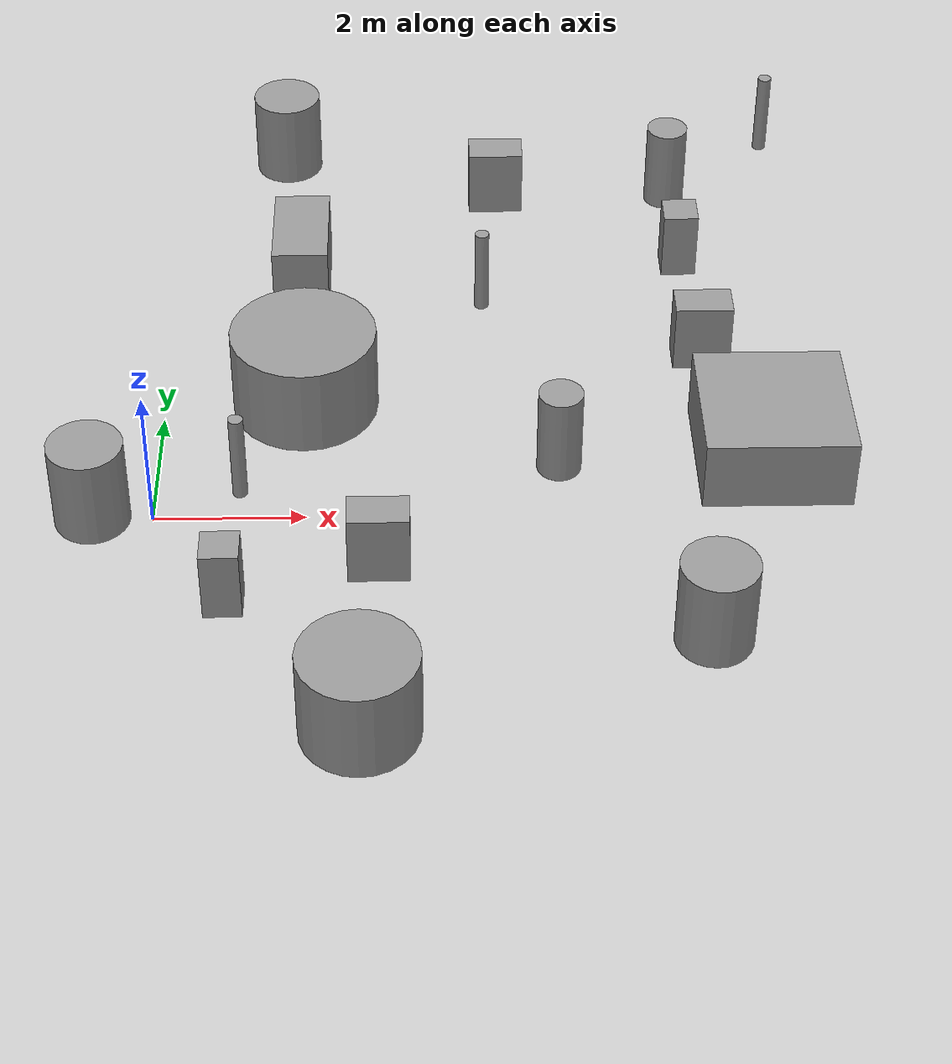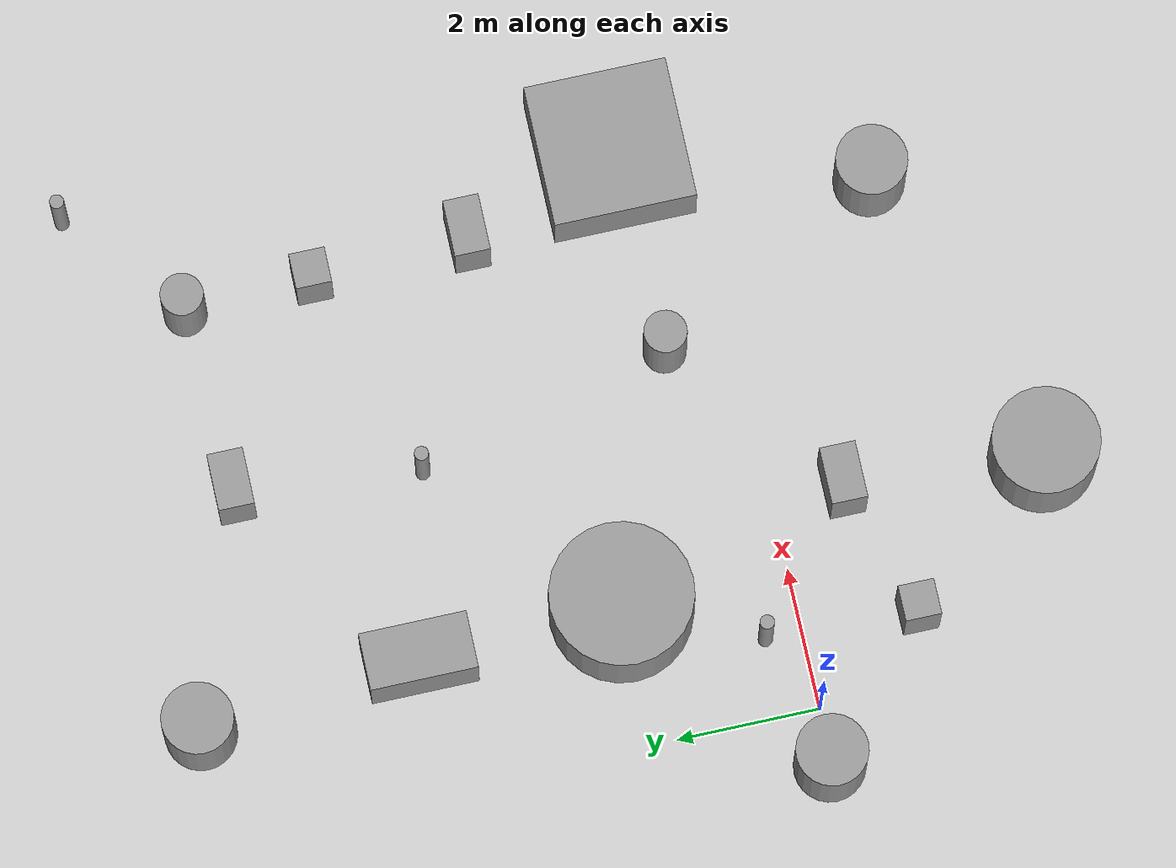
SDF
<sdf version="1.7">
 <world name="default">
  <model name="ground_plane">
   <static>1</static>
   <link name="link">
    <collision name="collision">
     <geometry><plane><normal>0 0 1</normal><size>100 100</size></plane></geometry>
     <surface>
      <contact><collide_bitmask>65535</collide_bitmask></contact>
      <friction><ode><mu>100</mu><mu2>50</mu2></ode></friction>
     </surface>
    </collision>
    <visual name="visual">
     <cast_shadows>0</cast_shadows>
     <geometry><plane><normal>0 0 1</normal><size>100 100</size></plane></geometry>
     <material>
      <script><uri>file://media/materials/scripts/gazebo.material</uri><name>Gazebo/Grey</name></script>
     </material>
    </visual>
   </link>
  </model>
  <model name="Untitled">
   <link name="link_0_clone_2_clone">
    <inertial>
     <mass>1</mass>
     <inertia><ixx>0.145833</ixx><ixy>0</ixy><ixz>0</ixz><iyy>0.145833</iyy><iyz>0</iyz><izz>0.125</izz></inertia>
    </inertial>
    <pose>4.8968 4.95603 0 0 -0 0</pose>
    <visual name="visual">
     <geometry><cylinder><radius>0.1</radius><length>1.5</length></cylinder></geometry>
     <material>
      <lighting>1</lighting>
      <script><uri>file://media/materials/scripts/gazebo.material</uri><name>Gazebo/Grey</name></script>
      <shader type="pixel"><normal_map>__default__</normal_map></shader>
      <ambient>0.3 0.3 0.3 1</ambient>
      <diffuse>0.7 0.7 0.7 1</diffuse>
      <specular>0.01 0.01 0.01 1</specular>
      <emissive>0 0 0 1</emissive>
     </material>
    </visual>
    <collision name="collision">
     <geometry><cylinder><radius>0.1</radius><length>1.5</length></cylinder></geometry>
     <surface>
      <friction>
       <ode><mu>1</mu><mu2>1</mu2><fdir1>0 0 0</fdir1><slip1>0</slip1><slip2>0</slip2></ode>
       <torsional>
        <coefficient>1</coefficient>
        <patch_radius>0</patch_radius>
        <surface_radius>0</surface_radius>
        <use_patch_radius>1</use_patch_radius>
        <ode><slip>0</slip></ode>
       </torsional>
      </friction>
      <bounce><restitution_coefficient>0</restitution_coefficient><threshold>1e+06</threshold></bounce>
      <contact>
       <collide_without_contact>0</collide_without_contact>
       <collide_without_contact_bitmask>1</collide_without_contact_bitmask>
       <collide_bitmask>1</collide_bitmask>
       <ode>
        <soft_cfm>0</soft_cfm>
        <soft_erp>0.2</soft_erp>
        <kp>1e+13</kp>
        <kd>1</kd>
        <max_vel>0.01</max_vel>
        <min_depth>0</min_depth>
       </ode>
       <bullet>
        <split_impulse>1</split_impulse>
        <split_impulse_penetration_threshold>-0.01</split_impulse_penetration_threshold>
        <soft_cfm>0</soft_cfm>
        <soft_erp>0.2</soft_erp>
        <kp>1e+13</kp>
        <kd>1</kd>
       </bullet>
      </contact>
     </surface>
    </collision>
   </link>
   <link name="link_0_clone_2_clone_0">
    <inertial>
     <mass>1</mass>
     <inertia><ixx>0.145833</ixx><ixy>0</ixy><ixz>0</ixz><iyy>0.145833</iyy><iyz>0</iyz><izz>0.125</izz></inertia>
    </inertial>
    <pose>3.23735 -3.40168 0 0 -0 0</pose>
    <visual name="visual">
     <geometry><cylinder><radius>0.75</radius><length>1.5</length></cylinder></geometry>
     <material>
      <lighting>1</lighting>
      <script><uri>file://media/materials/scripts/gazebo.material</uri><name>Gazebo/Grey</name></script>
      <shader type="pixel"><normal_map>__default__</normal_map></shader>
      <ambient>0.3 0.3 0.3 1</ambient>
      <diffuse>0.7 0.7 0.7 1</diffuse>
      <specular>0.01 0.01 0.01 1</specular>
      <emissive>0 0 0 1</emissive>
     </material>
    </visual>
    <collision name="collision">
     <geometry><cylinder><radius>0.75</radius><length>1.5</length></cylinder></geometry>
     <surface>
      <friction>
       <ode><mu>1</mu><mu2>1</mu2><fdir1>0 0 0</fdir1><slip1>0</slip1><slip2>0</slip2></ode>
       <torsional>
        <coefficient>1</coefficient>
        <patch_radius>0</patch_radius>
        <surface_radius>0</surface_radius>
        <use_patch_radius>1</use_patch_radius>
        <ode><slip>0</slip></ode>
       </torsional>
      </friction>
      <bounce><restitution_coefficient>0</restitution_coefficient><threshold>1e+06</threshold></bounce>
      <contact>
       <collide_without_contact>0</collide_without_contact>
       <collide_without_contact_bitmask>1</collide_without_contact_bitmask>
       <collide_bitmask>1</collide_bitmask>
       <ode>
        <soft_cfm>0</soft_cfm>
        <soft_erp>0.2</soft_erp>
        <kp>1e+13</kp>
        <kd>1</kd>
        <max_vel>0.01</max_vel>
        <min_depth>0</min_depth>
       </ode>
       <bullet>
        <split_impulse>1</split_impulse>
        <split_impulse_penetration_threshold>-0.01</split_impulse_penetration_threshold>
        <soft_cfm>0</soft_cfm>
        <soft_erp>0.2</soft_erp>
        <kp>1e+13</kp>
        <kd>1</kd>
       </bullet>
      </contact>
     </surface>
    </collision>
   </link>
   <link name="link_0_clone_2_clone_0_clone">
    <inertial>
     <mass>1</mass>
     <inertia><ixx>0.145833</ixx><ixy>0</ixy><ixz>0</ixz><iyy>0.145833</iyy><iyz>0</iyz><izz>0.125</izz></inertia>
    </inertial>
    <pose>5.84252 1.33545 0 0 -0 0</pose>
    <visual name="visual">
     <geometry><cylinder><radius>0.3</radius><length>1.5</length></cylinder></geometry>
     <material>
      <lighting>1</lighting>
      <script><uri>file://media/materials/scripts/gazebo.material</uri><name>Gazebo/Grey</name></script>
      <shader type="pixel"><normal_map>__default__</normal_map></shader>
      <ambient>0.3 0.3 0.3 1</ambient>
      <diffuse>0.7 0.7 0.7 1</diffuse>
      <specular>0.01 0.01 0.01 1</specular>
      <emissive>0 0 0 1</emissive>
     </material>
    </visual>
    <collision name="collision">
     <geometry><cylinder><radius>0.3</radius><length>1.5</length></cylinder></geometry>
     <surface>
      <friction>
       <ode><mu>1</mu><mu2>1</mu2><fdir1>0 0 0</fdir1><slip1>0</slip1><slip2>0</slip2></ode>
       <torsional>
        <coefficient>1</coefficient>
        <patch_radius>0</patch_radius>
        <surface_radius>0</surface_radius>
        <use_patch_radius>1</use_patch_radius>
        <ode><slip>0</slip></ode>
       </torsional>
      </friction>
      <bounce><restitution_coefficient>0</restitution_coefficient><threshold>1e+06</threshold></bounce>
      <contact>
       <collide_without_contact>0</collide_without_contact>
       <collide_without_contact_bitmask>1</collide_without_contact_bitmask>
       <collide_bitmask>1</collide_bitmask>
       <ode>
        <soft_cfm>0</soft_cfm>
        <soft_erp>0.2</soft_erp>
        <kp>1e+13</kp>
        <kd>1</kd>
        <max_vel>0.01</max_vel>
        <min_depth>0</min_depth>
       </ode>
       <bullet>
        <split_impulse>1</split_impulse>
        <split_impulse_penetration_threshold>-0.01</split_impulse_penetration_threshold>
        <soft_cfm>0</soft_cfm>
        <soft_erp>0.2</soft_erp>
        <kp>1e+13</kp>
        <kd>1</kd>
       </bullet>
      </contact>
     </surface>
    </collision>
   </link>
   <link name="link_0_clone_2_clone_0_clone_clone">
    <inertial>
     <mass>1</mass>
     <inertia><ixx>0.145833</ixx><ixy>0</ixy><ixz>0</ixz><iyy>0.145833</iyy><iyz>0</iyz><izz>0.125</izz></inertia>
    </inertial>
    <pose>7.78458 7.68648 0 0 -0 0</pose>
    <visual name="visual">
     <geometry><cylinder><radius>0.3</radius><length>1.5</length></cylinder></geometry>
     <material>
      <lighting>1</lighting>
      <script><uri>file://media/materials/scripts/gazebo.material</uri><name>Gazebo/Grey</name></script>
      <shader type="pixel"><normal_map>__default__</normal_map></shader>
      <ambient>0.3 0.3 0.3 1</ambient>
      <diffuse>0.7 0.7 0.7 1</diffuse>
      <specular>0.01 0.01 0.01 1</specular>
      <emissive>0 0 0 1</emissive>
     </material>
    </visual>
    <collision name="collision">
     <geometry><cylinder><radius>0.3</radius><length>1.5</length></cylinder></geometry>
     <surface>
      <friction>
       <ode><mu>1</mu><mu2>1</mu2><fdir1>0 0 0</fdir1><slip1>0</slip1><slip2>0</slip2></ode>
       <torsional>
        <coefficient>1</coefficient>
        <patch_radius>0</patch_radius>
        <surface_radius>0</surface_radius>
        <use_patch_radius>1</use_patch_radius>
        <ode><slip>0</slip></ode>
       </torsional>
      </friction>
      <bounce><restitution_coefficient>0</restitution_coefficient><threshold>1e+06</threshold></bounce>
      <contact>
       <collide_without_contact>0</collide_without_contact>
       <collide_without_contact_bitmask>1</collide_without_contact_bitmask>
       <collide_bitmask>1</collide_bitmask>
       <ode>
        <soft_cfm>0</soft_cfm>
        <soft_erp>0.2</soft_erp>
        <kp>1e+13</kp>
        <kd>1</kd>
        <max_vel>0.01</max_vel>
        <min_depth>0</min_depth>
       </ode>
       <bullet>
        <split_impulse>1</split_impulse>
        <split_impulse_penetration_threshold>-0.01</split_impulse_penetration_threshold>
        <soft_cfm>0</soft_cfm>
        <soft_erp>0.2</soft_erp>
        <kp>1e+13</kp>
        <kd>1</kd>
       </bullet>
      </contact>
     </surface>
    </collision>
   </link>
   <link name="link_0_clone_2_clone_2">
    <inertial>
     <mass>1</mass>
     <inertia><ixx>0.145833</ixx><ixy>0</ixy><ixz>0</ixz><iyy>0.145833</iyy><iyz>0</iyz><izz>0.125</izz></inertia>
    </inertial>
    <pose>2.40931 2.71499 0 0 -0 0</pose>
    <visual name="visual">
     <geometry><cylinder><radius>1</radius><length>1.5</length></cylinder></geometry>
     <material>
      <lighting>1</lighting>
      <script><uri>file://media/materials/scripts/gazebo.material</uri><name>Gazebo/Grey</name></script>
      <shader type="pixel"><normal_map>__default__</normal_map></shader>
      <ambient>0.3 0.3 0.3 1</ambient>
      <diffuse>0.7 0.7 0.7 1</diffuse>
      <specular>0.01 0.01 0.01 1</specular>
      <emissive>0 0 0 1</emissive>
     </material>
    </visual>
    <collision name="collision">
     <geometry><cylinder><radius>1</radius><length>1.5</length></cylinder></geometry>
     <surface>
      <friction>
       <ode><mu>1</mu><mu2>1</mu2><fdir1>0 0 0</fdir1><slip1>0</slip1><slip2>0</slip2></ode>
       <torsional>
        <coefficient>1</coefficient>
        <patch_radius>0</patch_radius>
        <surface_radius>0</surface_radius>
        <use_patch_radius>1</use_patch_radius>
        <ode><slip>0</slip></ode>
       </torsional>
      </friction>
      <bounce><restitution_coefficient>0</restitution_coefficient><threshold>1e+06</threshold></bounce>
      <contact>
       <collide_without_contact>0</collide_without_contact>
       <collide_without_contact_bitmask>1</collide_without_contact_bitmask>
       <collide_bitmask>1</collide_bitmask>
       <ode>
        <soft_cfm>0</soft_cfm>
        <soft_erp>0.2</soft_erp>
        <kp>1e+13</kp>
        <kd>1</kd>
        <max_vel>0.01</max_vel>
        <min_depth>0</min_depth>
       </ode>
       <bullet>
        <split_impulse>1</split_impulse>
        <split_impulse_penetration_threshold>-0.01</split_impulse_penetration_threshold>
        <soft_cfm>0</soft_cfm>
        <soft_erp>0.2</soft_erp>
        <kp>1e+13</kp>
        <kd>1</kd>
       </bullet>
      </contact>
     </surface>
    </collision>
   </link>
   <link name="link_0_clone_2_clone_clone_5">
    <inertial>
     <mass>1</mass>
     <inertia><ixx>0.145833</ixx><ixy>0</ixy><ixz>0</ixz><iyy>0.145833</iyy><iyz>0</iyz><izz>0.125</izz></inertia>
    </inertial>
    <pose>9.43282 9.09032 0 0 -0 0</pose>
    <visual name="visual">
     <geometry><cylinder><radius>0.1</radius><length>1.5</length></cylinder></geometry>
     <material>
      <lighting>1</lighting>
      <script><uri>file://media/materials/scripts/gazebo.material</uri><name>Gazebo/Grey</name></script>
      <shader type="pixel"><normal_map>__default__</normal_map></shader>
      <ambient>0.3 0.3 0.3 1</ambient>
      <diffuse>0.7 0.7 0.7 1</diffuse>
      <specular>0.01 0.01 0.01 1</specular>
      <emissive>0 0 0 1</emissive>
     </material>
    </visual>
    <collision name="collision">
     <geometry><cylinder><radius>0.1</radius><length>1.5</length></cylinder></geometry>
     <surface>
      <friction>
       <ode><mu>1</mu><mu2>1</mu2><fdir1>0 0 0</fdir1><slip1>0</slip1><slip2>0</slip2></ode>
       <torsional>
        <coefficient>1</coefficient>
        <patch_radius>0</patch_radius>
        <surface_radius>0</surface_radius>
        <use_patch_radius>1</use_patch_radius>
        <ode><slip>0</slip></ode>
       </torsional>
      </friction>
      <bounce><restitution_coefficient>0</restitution_coefficient><threshold>1e+06</threshold></bounce>
      <contact>
       <collide_without_contact>0</collide_without_contact>
       <collide_without_contact_bitmask>1</collide_without_contact_bitmask>
       <collide_bitmask>1</collide_bitmask>
       <ode>
        <soft_cfm>0</soft_cfm>
        <soft_erp>0.2</soft_erp>
        <kp>1e+13</kp>
        <kd>1</kd>
        <max_vel>0.01</max_vel>
        <min_depth>0</min_depth>
       </ode>
       <bullet>
        <split_impulse>1</split_impulse>
        <split_impulse_penetration_threshold>-0.01</split_impulse_penetration_threshold>
        <soft_cfm>0</soft_cfm>
        <soft_erp>0.2</soft_erp>
        <kp>1e+13</kp>
        <kd>1</kd>
       </bullet>
      </contact>
     </surface>
    </collision>
   </link>
   <link name="link_0_clone_2_clone_clone_6">
    <inertial>
     <mass>1</mass>
     <inertia><ixx>0.145833</ixx><ixy>0</ixy><ixz>0</ixz><iyy>0.145833</iyy><iyz>0</iyz><izz>0.125</izz></inertia>
    </inertial>
    <pose>1.5952 0.872263 0 0 -0 0</pose>
    <visual name="visual">
     <geometry><cylinder><radius>0.1</radius><length>1.5</length></cylinder></geometry>
     <material>
      <lighting>1</lighting>
      <script><uri>file://media/materials/scripts/gazebo.material</uri><name>Gazebo/Grey</name></script>
      <shader type="pixel"><normal_map>__default__</normal_map></shader>
      <ambient>0.3 0.3 0.3 1</ambient>
      <diffuse>0.7 0.7 0.7 1</diffuse>
      <specular>0.01 0.01 0.01 1</specular>
      <emissive>0 0 0 1</emissive>
     </material>
    </visual>
    <collision name="collision">
     <geometry><cylinder><radius>0.1</radius><length>1.5</length></cylinder></geometry>
     <surface>
      <friction>
       <ode><mu>1</mu><mu2>1</mu2><fdir1>0 0 0</fdir1><slip1>0</slip1><slip2>0</slip2></ode>
       <torsional>
        <coefficient>1</coefficient>
        <patch_radius>0</patch_radius>
        <surface_radius>0</surface_radius>
        <use_patch_radius>1</use_patch_radius>
        <ode><slip>0</slip></ode>
       </torsional>
      </friction>
      <bounce><restitution_coefficient>0</restitution_coefficient><threshold>1e+06</threshold></bounce>
      <contact>
       <collide_without_contact>0</collide_without_contact>
       <collide_without_contact_bitmask>1</collide_without_contact_bitmask>
       <collide_bitmask>1</collide_bitmask>
       <ode>
        <soft_cfm>0</soft_cfm>
        <soft_erp>0.2</soft_erp>
        <kp>1e+13</kp>
        <kd>1</kd>
        <max_vel>0.01</max_vel>
        <min_depth>0</min_depth>
       </ode>
       <bullet>
        <split_impulse>1</split_impulse>
        <split_impulse_penetration_threshold>-0.01</split_impulse_penetration_threshold>
        <soft_cfm>0</soft_cfm>
        <soft_erp>0.2</soft_erp>
        <kp>1e+13</kp>
        <kd>1</kd>
       </bullet>
      </contact>
     </surface>
    </collision>
   </link>
   <link name="link_0_clone_2_clone_clone_clone">
    <inertial>
     <mass>1</mass>
     <inertia><ixx>0.145833</ixx><ixy>0</ixy><ixz>0</ixz><iyy>0.145833</iyy><iyz>0</iyz><izz>0.125</izz></inertia>
    </inertial>
    <pose>7.59609 -1.95964 0 0 -0 0</pose>
    <visual name="visual">
     <geometry><cylinder><radius>0.5</radius><length>1.5</length></cylinder></geometry>
     <material>
      <lighting>1</lighting>
      <script><uri>file://media/materials/scripts/gazebo.material</uri><name>Gazebo/Grey</name></script>
      <shader type="pixel"><normal_map>__default__</normal_map></shader>
      <ambient>0.3 0.3 0.3 1</ambient>
      <diffuse>0.7 0.7 0.7 1</diffuse>
      <specular>0.01 0.01 0.01 1</specular>
      <emissive>0 0 0 1</emissive>
     </material>
    </visual>
    <collision name="collision">
     <geometry><cylinder><radius>0.5</radius><length>1.5</length></cylinder></geometry>
     <surface>
      <friction>
       <ode><mu>1</mu><mu2>1</mu2><fdir1>0 0 0</fdir1><slip1>0</slip1><slip2>0</slip2></ode>
       <torsional>
        <coefficient>1</coefficient>
        <patch_radius>0</patch_radius>
        <surface_radius>0</surface_radius>
        <use_patch_radius>1</use_patch_radius>
        <ode><slip>0</slip></ode>
       </torsional>
      </friction>
      <bounce><restitution_coefficient>0</restitution_coefficient><threshold>1e+06</threshold></bounce>
      <contact>
       <collide_without_contact>0</collide_without_contact>
       <collide_without_contact_bitmask>1</collide_without_contact_bitmask>
       <collide_bitmask>1</collide_bitmask>
       <ode>
        <soft_cfm>0</soft_cfm>
        <soft_erp>0.2</soft_erp>
        <kp>1e+13</kp>
        <kd>1</kd>
        <max_vel>0.01</max_vel>
        <min_depth>0</min_depth>
       </ode>
       <bullet>
        <split_impulse>1</split_impulse>
        <split_impulse_penetration_threshold>-0.01</split_impulse_penetration_threshold>
        <soft_cfm>0</soft_cfm>
        <soft_erp>0.2</soft_erp>
        <kp>1e+13</kp>
        <kd>1</kd>
       </bullet>
      </contact>
     </surface>
    </collision>
   </link>
   <link name="link_0_clone_2_clone_clone_clone_0">
    <inertial>
     <mass>1</mass>
     <inertia><ixx>0.145833</ixx><ixy>0</ixy><ixz>0</ixz><iyy>0.145833</iyy><iyz>0</iyz><izz>0.125</izz></inertia>
    </inertial>
    <pose>-0.310387 0.402759 0 0 -0 0</pose>
    <visual name="visual">
     <geometry><cylinder><radius>0.5</radius><length>1.5</length></cylinder></geometry>
     <material>
      <lighting>1</lighting>
      <script><uri>file://media/materials/scripts/gazebo.material</uri><name>Gazebo/Grey</name></script>
      <shader type="pixel"><normal_map>__default__</normal_map></shader>
      <ambient>0.3 0.3 0.3 1</ambient>
      <diffuse>0.7 0.7 0.7 1</diffuse>
      <specular>0.01 0.01 0.01 1</specular>
      <emissive>0 0 0 1</emissive>
     </material>
    </visual>
    <collision name="collision">
     <geometry><cylinder><radius>0.5</radius><length>1.5</length></cylinder></geometry>
     <surface>
      <friction>
       <ode><mu>1</mu><mu2>1</mu2><fdir1>0 0 0</fdir1><slip1>0</slip1><slip2>0</slip2></ode>
       <torsional>
        <coefficient>1</coefficient>
        <patch_radius>0</patch_radius>
        <surface_radius>0</surface_radius>
        <use_patch_radius>1</use_patch_radius>
        <ode><slip>0</slip></ode>
       </torsional>
      </friction>
      <bounce><restitution_coefficient>0</restitution_coefficient><threshold>1e+06</threshold></bounce>
      <contact>
       <collide_without_contact>0</collide_without_contact>
       <collide_without_contact_bitmask>1</collide_without_contact_bitmask>
       <collide_bitmask>1</collide_bitmask>
       <ode>
        <soft_cfm>0</soft_cfm>
        <soft_erp>0.2</soft_erp>
        <kp>1e+13</kp>
        <kd>1</kd>
        <max_vel>0.01</max_vel>
        <min_depth>0</min_depth>
       </ode>
       <bullet>
        <split_impulse>1</split_impulse>
        <split_impulse_penetration_threshold>-0.01</split_impulse_penetration_threshold>
        <soft_cfm>0</soft_cfm>
        <soft_erp>0.2</soft_erp>
        <kp>1e+13</kp>
        <kd>1</kd>
       </bullet>
      </contact>
     </surface>
    </collision>
   </link>
   <link name="link_0_clone_2_clone_clone_clone_1">
    <inertial>
     <mass>1</mass>
     <inertia><ixx>0.145833</ixx><ixy>0</ixy><ixz>0</ixz><iyy>0.145833</iyy><iyz>0</iyz><izz>0.125</izz></inertia>
    </inertial>
    <pose>1.97548 8.69547 0 0 -0 0</pose>
    <visual name="visual">
     <geometry><cylinder><radius>0.5</radius><length>1.5</length></cylinder></geometry>
     <material>
      <lighting>1</lighting>
      <script><uri>file://media/materials/scripts/gazebo.material</uri><name>Gazebo/Grey</name></script>
      <shader type="pixel"><normal_map>__default__</normal_map></shader>
      <ambient>0.3 0.3 0.3 1</ambient>
      <diffuse>0.7 0.7 0.7 1</diffuse>
      <specular>0.01 0.01 0.01 1</specular>
      <emissive>0 0 0 1</emissive>
     </material>
    </visual>
    <collision name="collision">
     <geometry><cylinder><radius>0.5</radius><length>1.5</length></cylinder></geometry>
     <surface>
      <friction>
       <ode><mu>1</mu><mu2>1</mu2><fdir1>0 0 0</fdir1><slip1>0</slip1><slip2>0</slip2></ode>
       <torsional>
        <coefficient>1</coefficient>
        <patch_radius>0</patch_radius>
        <surface_radius>0</surface_radius>
        <use_patch_radius>1</use_patch_radius>
        <ode><slip>0</slip></ode>
       </torsional>
      </friction>
      <bounce><restitution_coefficient>0</restitution_coefficient><threshold>1e+06</threshold></bounce>
      <contact>
       <collide_without_contact>0</collide_without_contact>
       <collide_without_contact_bitmask>1</collide_without_contact_bitmask>
       <collide_bitmask>1</collide_bitmask>
       <ode>
        <soft_cfm>0</soft_cfm>
        <soft_erp>0.2</soft_erp>
        <kp>1e+13</kp>
        <kd>1</kd>
        <max_vel>0.01</max_vel>
        <min_depth>0</min_depth>
       </ode>
       <bullet>
        <split_impulse>1</split_impulse>
        <split_impulse_penetration_threshold>-0.01</split_impulse_penetration_threshold>
        <soft_cfm>0</soft_cfm>
        <soft_erp>0.2</soft_erp>
        <kp>1e+13</kp>
        <kd>1</kd>
       </bullet>
      </contact>
     </surface>
    </collision>
   </link>
   <link name="link_3_clone">
    <inertial>
     <mass>1</mass>
     <inertia>
      <ixx>0.166667</ixx>
      <ixy>0</ixy>
      <ixz>0</ixz>
      <iyy>0.166667</iyy>
      <iyz>0</iyz>
      <izz>0.166667</izz>
     </inertia>
    </inertial>
    <pose>2.28494 5.57245 0 0 -0 0</pose>
    <visual name="visual">
     <geometry><box><size>0.8 1.5 1</size></box></geometry>
     <material>
      <lighting>1</lighting>
      <script><uri>file://media/materials/scripts/gazebo.material</uri><name>Gazebo/Grey</name></script>
      <shader type="pixel"><normal_map>__default__</normal_map></shader>
      <ambient>0.3 0.3 0.3 1</ambient>
      <diffuse>0.7 0.7 0.7 1</diffuse>
      <specular>0.01 0.01 0.01 1</specular>
      <emissive>0 0 0 1</emissive>
     </material>
    </visual>
    <collision name="collision">
     <geometry><box><size>0.8 1.5 1</size></box></geometry>
     <surface>
      <friction>
       <ode><mu>1</mu><mu2>1</mu2><fdir1>0 0 0</fdir1><slip1>0</slip1><slip2>0</slip2></ode>
       <torsional>
        <coefficient>1</coefficient>
        <patch_radius>0</patch_radius>
        <surface_radius>0</surface_radius>
        <use_patch_radius>1</use_patch_radius>
        <ode><slip>0</slip></ode>
       </torsional>
      </friction>
      <bounce><restitution_coefficient>0</restitution_coefficient><threshold>1e+06</threshold></bounce>
      <contact>
       <collide_without_contact>0</collide_without_contact>
       <collide_without_contact_bitmask>1</collide_without_contact_bitmask>
       <collide_bitmask>1</collide_bitmask>
       <ode>
        <soft_cfm>0</soft_cfm>
        <soft_erp>0.2</soft_erp>
        <kp>1e+13</kp>
        <kd>1</kd>
        <max_vel>0.01</max_vel>
        <min_depth>0</min_depth>
       </ode>
       <bullet>
        <split_impulse>1</split_impulse>
        <split_impulse_penetration_threshold>-0.01</split_impulse_penetration_threshold>
        <soft_cfm>0</soft_cfm>
        <soft_erp>0.2</soft_erp>
        <kp>1e+13</kp>
        <kd>1</kd>
       </bullet>
      </contact>
     </surface>
    </collision>
   </link>
   <link name="link_3_clone_0_clone_0">
    <inertial>
     <mass>1</mass>
     <inertia>
      <ixx>0.166667</ixx>
      <ixy>0</ixy>
      <ixz>0</ixz>
      <iyy>0.166667</iyy>
      <iyz>0</iyz>
      <izz>0.166667</izz>
     </inertia>
    </inertial>
    <pose>7.82893 5.88662 0 0 -0 0</pose>
    <visual name="visual">
     <geometry><box><size>0.5 0.5 1</size></box></geometry>
     <material>
      <lighting>1</lighting>
      <script><uri>file://media/materials/scripts/gazebo.material</uri><name>Gazebo/Grey</name></script>
      <shader type="pixel"><normal_map>__default__</normal_map></shader>
      <ambient>0.3 0.3 0.3 1</ambient>
      <diffuse>0.7 0.7 0.7 1</diffuse>
      <specular>0.01 0.01 0.01 1</specular>
      <emissive>0 0 0 1</emissive>
     </material>
    </visual>
    <collision name="collision">
     <geometry><box><size>0.5 0.5 1</size></box></geometry>
     <surface>
      <friction>
       <ode><mu>1</mu><mu2>1</mu2><fdir1>0 0 0</fdir1><slip1>0</slip1><slip2>0</slip2></ode>
       <torsional>
        <coefficient>1</coefficient>
        <patch_radius>0</patch_radius>
        <surface_radius>0</surface_radius>
        <use_patch_radius>1</use_patch_radius>
        <ode><slip>0</slip></ode>
       </torsional>
      </friction>
      <bounce><restitution_coefficient>0</restitution_coefficient><threshold>1e+06</threshold></bounce>
      <contact>
       <collide_without_contact>0</collide_without_contact>
       <collide_without_contact_bitmask>1</collide_without_contact_bitmask>
       <collide_bitmask>1</collide_bitmask>
       <ode>
        <soft_cfm>0</soft_cfm>
        <soft_erp>0.2</soft_erp>
        <kp>1e+13</kp>
        <kd>1</kd>
        <max_vel>0.01</max_vel>
        <min_depth>0</min_depth>
       </ode>
       <bullet>
        <split_impulse>1</split_impulse>
        <split_impulse_penetration_threshold>-0.01</split_impulse_penetration_threshold>
        <soft_cfm>0</soft_cfm>
        <soft_erp>0.2</soft_erp>
        <kp>1e+13</kp>
        <kd>1</kd>
       </bullet>
      </contact>
     </surface>
    </collision>
   </link>
   <link name="link_3_clone_0_clone_2">
    <inertial>
     <mass>1</mass>
     <inertia>
      <ixx>0.166667</ixx>
      <ixy>0</ixy>
      <ixz>0</ixz>
      <iyy>0.166667</iyy>
      <iyz>0</iyz>
      <izz>0.166667</izz>
     </inertia>
    </inertial>
    <pose>1.49395 -1.23822 0 0 -0 0</pose>
    <visual name="visual">
     <geometry><box><size>0.5 0.5 1</size></box></geometry>
     <material>
      <lighting>1</lighting>
      <script><uri>file://media/materials/scripts/gazebo.material</uri><name>Gazebo/Grey</name></script>
      <shader type="pixel"><normal_map>__default__</normal_map></shader>
      <ambient>0.3 0.3 0.3 1</ambient>
      <diffuse>0.7 0.7 0.7 1</diffuse>
      <specular>0.01 0.01 0.01 1</specular>
      <emissive>0 0 0 1</emissive>
     </material>
    </visual>
    <collision name="collision">
     <geometry><box><size>0.5 0.5 1</size></box></geometry>
     <surface>
      <friction>
       <ode><mu>1</mu><mu2>1</mu2><fdir1>0 0 0</fdir1><slip1>0</slip1><slip2>0</slip2></ode>
       <torsional>
        <coefficient>1</coefficient>
        <patch_radius>0</patch_radius>
        <surface_radius>0</surface_radius>
        <use_patch_radius>1</use_patch_radius>
        <ode><slip>0</slip></ode>
       </torsional>
      </friction>
      <bounce><restitution_coefficient>0</restitution_coefficient><threshold>1e+06</threshold></bounce>
      <contact>
       <collide_without_contact>0</collide_without_contact>
       <collide_without_contact_bitmask>1</collide_without_contact_bitmask>
       <collide_bitmask>1</collide_bitmask>
       <ode>
        <soft_cfm>0</soft_cfm>
        <soft_erp>0.2</soft_erp>
        <kp>1e+13</kp>
        <kd>1</kd>
        <max_vel>0.01</max_vel>
        <min_depth>0</min_depth>
       </ode>
       <bullet>
        <split_impulse>1</split_impulse>
        <split_impulse_penetration_threshold>-0.01</split_impulse_penetration_threshold>
        <soft_cfm>0</soft_cfm>
        <soft_erp>0.2</soft_erp>
        <kp>1e+13</kp>
        <kd>1</kd>
       </bullet>
      </contact>
     </surface>
    </collision>
   </link>
   <link name="link_3_clone_1_clone_0">
    <inertial>
     <mass>1</mass>
     <inertia>
      <ixx>0.166667</ixx>
      <ixy>0</ixy>
      <ixz>0</ixz>
      <iyy>0.166667</iyy>
      <iyz>0</iyz>
      <izz>0.166667</izz>
     </inertia>
    </inertial>
    <pose>5.16878 7.56911 0 0 -0 0</pose>
    <visual name="visual">
     <geometry><box><size>0.8 0.5 1</size></box></geometry>
     <material>
      <lighting>1</lighting>
      <script><uri>file://media/materials/scripts/gazebo.material</uri><name>Gazebo/Grey</name></script>
      <shader type="pixel"><normal_map>__default__</normal_map></shader>
      <ambient>0.3 0.3 0.3 1</ambient>
      <diffuse>0.7 0.7 0.7 1</diffuse>
      <specular>0.01 0.01 0.01 1</specular>
      <emissive>0 0 0 1</emissive>
     </material>
    </visual>
    <collision name="collision">
     <geometry><box><size>0.8 0.5 1</size></box></geometry>
     <surface>
      <friction>
       <ode><mu>1</mu><mu2>1</mu2><fdir1>0 0 0</fdir1><slip1>0</slip1><slip2>0</slip2></ode>
       <torsional>
        <coefficient>1</coefficient>
        <patch_radius>0</patch_radius>
        <surface_radius>0</surface_radius>
        <use_patch_radius>1</use_patch_radius>
        <ode><slip>0</slip></ode>
       </torsional>
      </friction>
      <bounce><restitution_coefficient>0</restitution_coefficient><threshold>1e+06</threshold></bounce>
      <contact>
       <collide_without_contact>0</collide_without_contact>
       <collide_without_contact_bitmask>1</collide_without_contact_bitmask>
       <collide_bitmask>1</collide_bitmask>
       <ode>
        <soft_cfm>0</soft_cfm>
        <soft_erp>0.2</soft_erp>
        <kp>1e+13</kp>
        <kd>1</kd>
        <max_vel>0.01</max_vel>
        <min_depth>0</min_depth>
       </ode>
       <bullet>
        <split_impulse>1</split_impulse>
        <split_impulse_penetration_threshold>-0.01</split_impulse_penetration_threshold>
        <soft_cfm>0</soft_cfm>
        <soft_erp>0.2</soft_erp>
        <kp>1e+13</kp>
        <kd>1</kd>
       </bullet>
      </contact>
     </surface>
    </collision>
   </link>
   <link name="link_3_clone_1_clone_1">
    <inertial>
     <mass>1</mass>
     <inertia>
      <ixx>0.166667</ixx>
      <ixy>0</ixy>
      <ixz>0</ixz>
      <iyy>0.166667</iyy>
      <iyz>0</iyz>
      <izz>0.166667</izz>
     </inertia>
    </inertial>
    <pose>7.95623 3.66269 0 0 -0 0</pose>
    <visual name="visual">
     <geometry><box><size>0.8 0.5 1</size></box></geometry>
     <material>
      <lighting>1</lighting>
      <script><uri>file://media/materials/scripts/gazebo.material</uri><name>Gazebo/Grey</name></script>
      <shader type="pixel"><normal_map>__default__</normal_map></shader>
      <ambient>0.3 0.3 0.3 1</ambient>
      <diffuse>0.7 0.7 0.7 1</diffuse>
      <specular>0.01 0.01 0.01 1</specular>
      <emissive>0 0 0 1</emissive>
     </material>
    </visual>
    <collision name="collision">
     <geometry><box><size>0.8 0.5 1</size></box></geometry>
     <surface>
      <friction>
       <ode><mu>1</mu><mu2>1</mu2><fdir1>0 0 0</fdir1><slip1>0</slip1><slip2>0</slip2></ode>
       <torsional>
        <coefficient>1</coefficient>
        <patch_radius>0</patch_radius>
        <surface_radius>0</surface_radius>
        <use_patch_radius>1</use_patch_radius>
        <ode><slip>0</slip></ode>
       </torsional>
      </friction>
      <bounce><restitution_coefficient>0</restitution_coefficient><threshold>1e+06</threshold></bounce>
      <contact>
       <collide_without_contact>0</collide_without_contact>
       <collide_without_contact_bitmask>1</collide_without_contact_bitmask>
       <collide_bitmask>1</collide_bitmask>
       <ode>
        <soft_cfm>0</soft_cfm>
        <soft_erp>0.2</soft_erp>
        <kp>1e+13</kp>
        <kd>1</kd>
        <max_vel>0.01</max_vel>
        <min_depth>0</min_depth>
       </ode>
       <bullet>
        <split_impulse>1</split_impulse>
        <split_impulse_penetration_threshold>-0.01</split_impulse_penetration_threshold>
        <soft_cfm>0</soft_cfm>
        <soft_erp>0.2</soft_erp>
        <kp>1e+13</kp>
        <kd>1</kd>
       </bullet>
      </contact>
     </surface>
    </collision>
   </link>
   <link name="link_3_clone_1_clone_5">
    <inertial>
     <mass>1</mass>
     <inertia>
      <ixx>0.166667</ixx>
      <ixy>0</ixy>
      <ixz>0</ixz>
      <iyy>0.166667</iyy>
      <iyz>0</iyz>
      <izz>0.166667</izz>
     </inertia>
    </inertial>
    <pose>3.44691 -0.620855 0 0 -0 0</pose>
    <visual name="visual">
     <geometry><box><size>0.8 0.5 1</size></box></geometry>
     <material>
      <lighting>1</lighting>
      <script><uri>file://media/materials/scripts/gazebo.material</uri><name>Gazebo/Grey</name></script>
      <shader type="pixel"><normal_map>__default__</normal_map></shader>
      <ambient>0.3 0.3 0.3 1</ambient>
      <diffuse>0.7 0.7 0.7 1</diffuse>
      <specular>0.01 0.01 0.01 1</specular>
      <emissive>0 0 0 1</emissive>
     </material>
    </visual>
    <collision name="collision">
     <geometry><box><size>0.8 0.5 1</size></box></geometry>
     <surface>
      <friction>
       <ode><mu>1</mu><mu2>1</mu2><fdir1>0 0 0</fdir1><slip1>0</slip1><slip2>0</slip2></ode>
       <torsional>
        <coefficient>1</coefficient>
        <patch_radius>0</patch_radius>
        <surface_radius>0</surface_radius>
        <use_patch_radius>1</use_patch_radius>
        <ode><slip>0</slip></ode>
       </torsional>
      </friction>
      <bounce><restitution_coefficient>0</restitution_coefficient><threshold>1e+06</threshold></bounce>
      <contact>
       <collide_without_contact>0</collide_without_contact>
       <collide_without_contact_bitmask>1</collide_without_contact_bitmask>
       <collide_bitmask>1</collide_bitmask>
       <ode>
        <soft_cfm>0</soft_cfm>
        <soft_erp>0.2</soft_erp>
        <kp>1e+13</kp>
        <kd>1</kd>
        <max_vel>0.01</max_vel>
        <min_depth>0</min_depth>
       </ode>
       <bullet>
        <split_impulse>1</split_impulse>
        <split_impulse_penetration_threshold>-0.01</split_impulse_penetration_threshold>
        <soft_cfm>0</soft_cfm>
        <soft_erp>0.2</soft_erp>
        <kp>1e+13</kp>
        <kd>1</kd>
       </bullet>
      </contact>
     </surface>
    </collision>
   </link>
   <link name="link_3_clone_2">
    <inertial>
     <mass>1</mass>
     <inertia>
      <ixx>0.166667</ixx>
      <ixy>0</ixy>
      <ixz>0</ixz>
      <iyy>0.166667</iyy>
      <iyz>0</iyz>
      <izz>0.166667</izz>
     </inertia>
    </inertial>
    <pose>8.68689 1.47861 0 0 -0 0</pose>
    <visual name="visual">
     <geometry><box><size>2 2 1</size></box></geometry>
     <material>
      <lighting>1</lighting>
      <script><uri>file://media/materials/scripts/gazebo.material</uri><name>Gazebo/Grey</name></script>
      <shader type="pixel"><normal_map>__default__</normal_map></shader>
      <ambient>0.3 0.3 0.3 1</ambient>
      <diffuse>0.7 0.7 0.7 1</diffuse>
      <specular>0.01 0.01 0.01 1</specular>
      <emissive>0 0 0 1</emissive>
     </material>
    </visual>
    <collision name="collision">
     <geometry><box><size>2 2 1</size></box></geometry>
     <surface>
      <friction>
       <ode><mu>1</mu><mu2>1</mu2><fdir1>0 0 0</fdir1><slip1>0</slip1><slip2>0</slip2></ode>
       <torsional>
        <coefficient>1</coefficient>
        <patch_radius>0</patch_radius>
        <surface_radius>0</surface_radius>
        <use_patch_radius>1</use_patch_radius>
        <ode><slip>0</slip></ode>
       </torsional>
      </friction>
      <bounce><restitution_coefficient>0</restitution_coefficient><threshold>1e+06</threshold></bounce>
      <contact>
       <collide_without_contact>0</collide_without_contact>
       <collide_without_contact_bitmask>1</collide_without_contact_bitmask>
       <collide_bitmask>1</collide_bitmask>
       <ode>
        <soft_cfm>0</soft_cfm>
        <soft_erp>0.2</soft_erp>
        <kp>1e+13</kp>
        <kd>1</kd>
        <max_vel>0.01</max_vel>
        <min_depth>0</min_depth>
       </ode>
       <bullet>
        <split_impulse>1</split_impulse>
        <split_impulse_penetration_threshold>-0.01</split_impulse_penetration_threshold>
        <soft_cfm>0</soft_cfm>
        <soft_erp>0.2</soft_erp>
        <kp>1e+13</kp>
        <kd>1</kd>
       </bullet>
      </contact>
     </surface>
    </collision>
   </link>
   <static>0</static>
   <pose>-0.488633 -0.355409 0.5 0 -0 0</pose>
  </model>
 </world>
</sdf>
